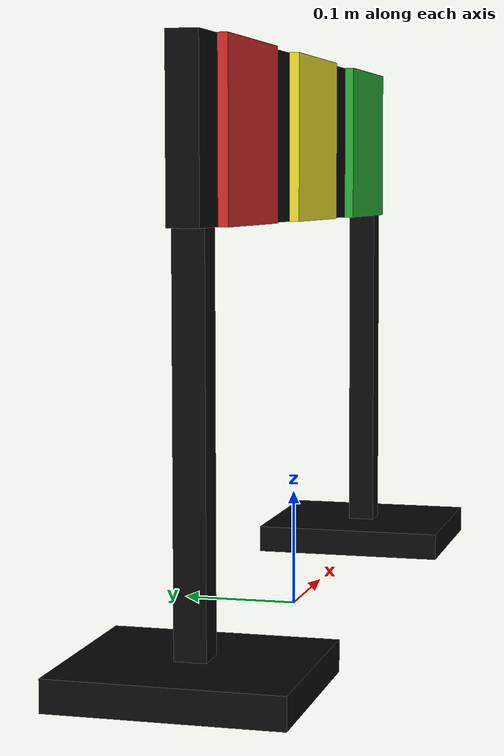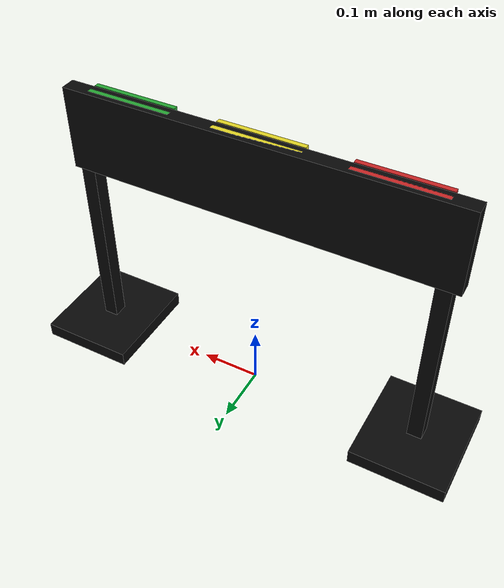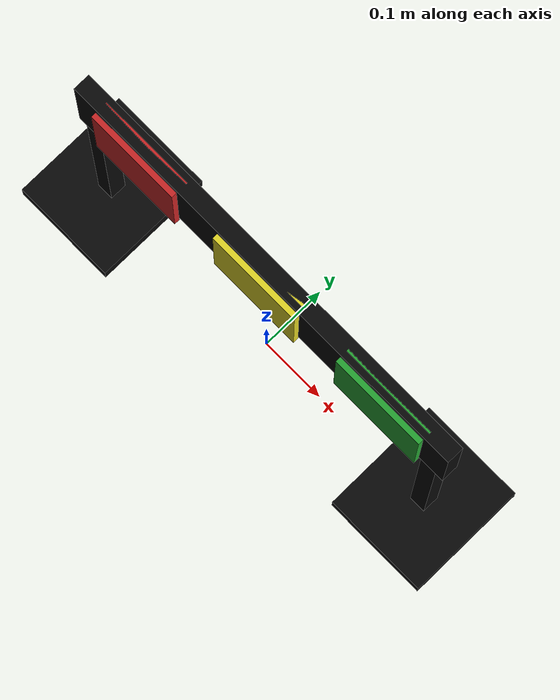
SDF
<?xml version="1.0"?>
<sdf version="1.7">
  <model name="__MODEL_NAME__">
    <!-- The lamp is a fixed roadside object.  Moving its free child links
         made the display panels drift away from the frame under physics. -->
    <static>false</static>
    <link name="frame"><gravity>false</gravity><inertial><mass>1</mass><inertia><ixx>0.1</ixx><iyy>0.1</iyy><izz>0.1</izz></inertia></inertial>
      <visual name="lamp_housing"><pose>0 0 0.410 0 0 0</pose><geometry><box><size>0.640 0.025 0.140</size></box></geometry><material><ambient>0.015 0.015 0.015 1</ambient><diffuse>0.03 0.03 0.03 1</diffuse></material></visual><collision name="lamp_housing_collision"><pose>0 0 0.410 0 0 0</pose><geometry><box><size>0.640 0.025 0.140</size></box></geometry></collision>
      <visual name="left_support"><pose>-0.295 0 0.170 0 0 0</pose><geometry><box><size>0.025 0.025 0.340</size></box></geometry><material><ambient>0.015 0.015 0.015 1</ambient><diffuse>0.03 0.03 0.03 1</diffuse></material></visual><visual name="right_support"><pose>0.295 0 0.170 0 0 0</pose><geometry><box><size>0.025 0.025 0.340</size></box></geometry><material><ambient>0.015 0.015 0.015 1</ambient><diffuse>0.03 0.03 0.03 1</diffuse></material></visual>
      <collision name="left_support_collision"><pose>-0.295 0 0.170 0 0 0</pose><geometry><box><size>0.025 0.025 0.340</size></box></geometry></collision><collision name="right_support_collision"><pose>0.295 0 0.170 0 0 0</pose><geometry><box><size>0.025 0.025 0.340</size></box></geometry></collision>
      <visual name="left_foot"><pose>-0.295 0 0.0125 0 0 0</pose><geometry><box><size>0.160 0.180 0.025</size></box></geometry><material><ambient>0.015 0.015 0.015 1</ambient><diffuse>0.03 0.03 0.03 1</diffuse></material></visual><visual name="right_foot"><pose>0.295 0 0.0125 0 0 0</pose><geometry><box><size>0.160 0.180 0.025</size></box></geometry><material><ambient>0.015 0.015 0.015 1</ambient><diffuse>0.03 0.03 0.03 1</diffuse></material></visual>
      <collision name="left_foot_collision"><pose>-0.295 0 0.0125 0 0 0</pose><geometry><box><size>0.160 0.180 0.025</size></box></geometry></collision><collision name="right_foot_collision"><pose>0.295 0 0.0125 0 0 0</pose><geometry><box><size>0.160 0.180 0.025</size></box></geometry></collision>
    </link>
    <link name="red_off"><gravity>false</gravity><pose>-0.210 -0.018 0.410 0 0 0</pose><inertial><mass>0.001</mass><inertia><ixx>0.00001</ixx><iyy>0.00001</iyy><izz>0.00001</izz></inertia></inertial><visual name="panel"><geometry><box><size>0.140 0.008 0.140</size></box></geometry><material><script><uri>file:///root/traffic_light/materials/scripts</uri><uri>file:///root/traffic_light/materials/textures</uri><name>TrafficLight/RedOff</name></script></material></visual></link>
    <link name="red_on"><gravity>false</gravity><pose>-0.210 0 0.410 0 0 0</pose><inertial><mass>0.001</mass><inertia><ixx>0.00001</ixx><iyy>0.00001</iyy><izz>0.00001</izz></inertia></inertial><visual name="panel"><geometry><box><size>0.140 0.008 0.140</size></box></geometry><material><script><uri>file:///root/traffic_light/materials/scripts</uri><uri>file:///root/traffic_light/materials/textures</uri><name>TrafficLight/RedOn</name></script></material></visual></link>
    <link name="yellow_off"><gravity>false</gravity><pose>0 -0.018 0.410 0 0 0</pose><inertial><mass>0.001</mass><inertia><ixx>0.00001</ixx><iyy>0.00001</iyy><izz>0.00001</izz></inertia></inertial><visual name="panel"><geometry><box><size>0.140 0.008 0.140</size></box></geometry><material><script><uri>file:///root/traffic_light/materials/scripts</uri><uri>file:///root/traffic_light/materials/textures</uri><name>TrafficLight/YellowOff</name></script></material></visual></link>
    <link name="yellow_on"><gravity>false</gravity><pose>0 0 0.410 0 0 0</pose><inertial><mass>0.001</mass><inertia><ixx>0.00001</ixx><iyy>0.00001</iyy><izz>0.00001</izz></inertia></inertial><visual name="panel"><geometry><box><size>0.140 0.008 0.140</size></box></geometry><material><script><uri>file:///root/traffic_light/materials/scripts</uri><uri>file:///root/traffic_light/materials/textures</uri><name>TrafficLight/YellowOn</name></script></material></visual></link>
    <link name="green_off"><gravity>false</gravity><pose>0.210 -0.018 0.410 0 0 0</pose><inertial><mass>0.001</mass><inertia><ixx>0.00001</ixx><iyy>0.00001</iyy><izz>0.00001</izz></inertia></inertial><visual name="panel"><geometry><box><size>0.140 0.008 0.140</size></box></geometry><material><script><uri>file:///root/traffic_light/materials/scripts</uri><uri>file:///root/traffic_light/materials/textures</uri><name>TrafficLight/GreenOff</name></script></material></visual></link>
    <link name="green_on"><gravity>false</gravity><pose>0.210 0 0.410 0 0 0</pose><inertial><mass>0.001</mass><inertia><ixx>0.00001</ixx><iyy>0.00001</iyy><izz>0.00001</izz></inertia></inertial><visual name="panel"><geometry><box><size>0.140 0.008 0.140</size></box></geometry><material><script><uri>file:///root/traffic_light/materials/scripts</uri><uri>file:///root/traffic_light/materials/textures</uri><name>TrafficLight/GreenOn</name></script></material></visual></link>
  </model>
</sdf>
